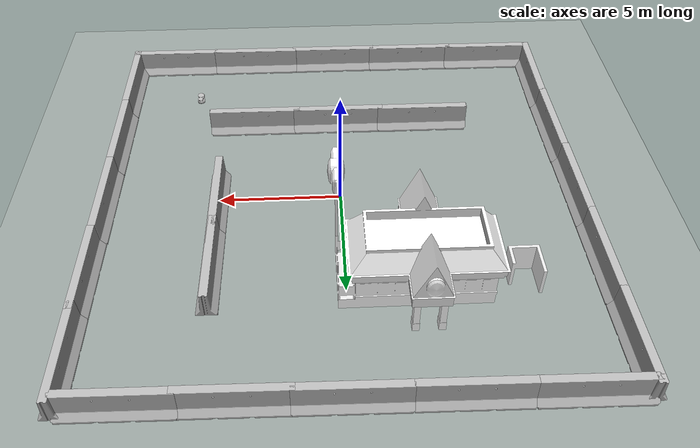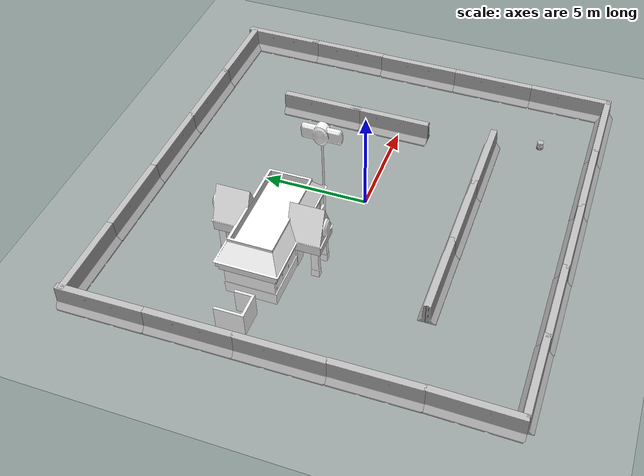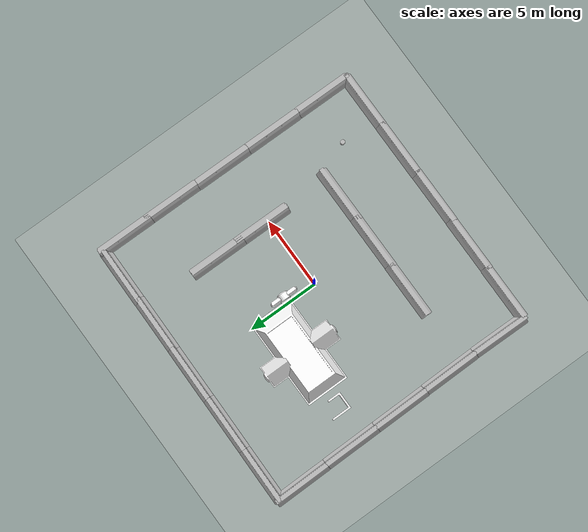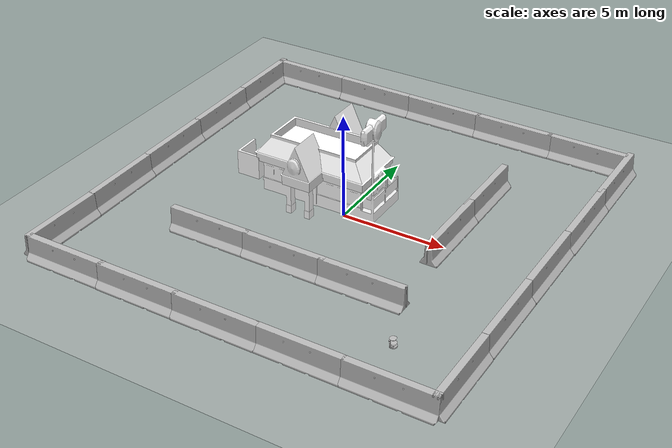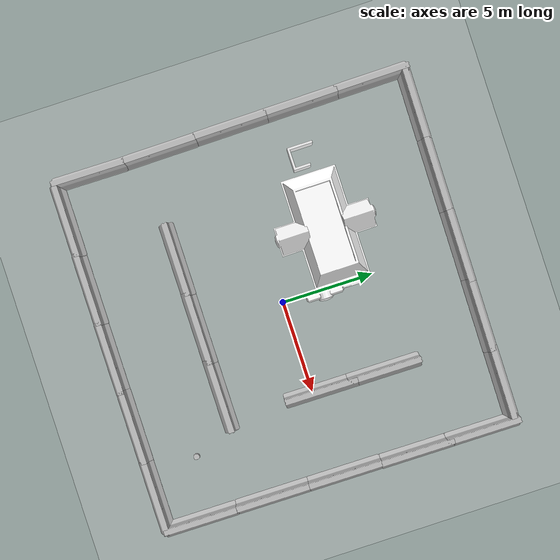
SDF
<sdf version="1.6">
 <world name="default">
  <light name="sun" type="directional">
   <pose>0 0 10 0 -0 0</pose>
   <diffuse>0.8 0.8 0.8 1</diffuse>
   <specular>0.1 0.1 0.1 1</specular>
   <attenuation>
    <range>1000</range>
    <constant>0.9</constant>
    <linear>0.01</linear>
    <quadratic>0.001</quadratic>
   </attenuation>
   <direction>-0.5 0.5 -1</direction>
  </light>
  <model name="ground_plane">
   <static>1</static>
   <link name="link">
    <collision name="collision">
     <geometry><plane><normal>0 0 1</normal><size>100 100</size></plane></geometry>
     <surface><friction><ode><mu>100</mu><mu2>50</mu2></ode></friction></surface>
    </collision>
    <visual name="visual">
     <cast_shadows>0</cast_shadows>
     <geometry><plane><normal>0 0 1</normal><size>100 100</size></plane></geometry>
     <material>
      <script><uri>file://media/materials/scripts/gazebo.material</uri><name>Gazebo/Grey</name></script>
     </material>
    </visual>
   </link>
  </model>
  <gravity>0 0 -9.8</gravity>
  <magnetic_field>6e-06 2.3e-05 -4.2e-05</magnetic_field>
  <atmosphere type="adiabatic"/>
  <physics name="default_physics" default="0" type="ode">
   <max_step_size>0.001</max_step_size>
   <real_time_factor>1</real_time_factor>
   <real_time_update_rate>1000</real_time_update_rate>
  </physics>
  <scene><ambient>0.4 0.4 0.4 1</ambient><background>0.7 0.7 0.7 1</background><shadows>1</shadows></scene>
  <spherical_coordinates>
   <surface_model>EARTH_WGS84</surface_model>
   <latitude_deg>0</latitude_deg>
   <longitude_deg>0</longitude_deg>
   <elevation>0</elevation>
   <heading_deg>0</heading_deg>
  </spherical_coordinates>
  <model name="jersey_barrier_0">
   <static>1</static>
   <link name="link">
    <visual name="visual">
     <geometry>
      <mesh><uri>model://jersey_barrier/meshes/jersey_barrier.dae</uri><scale>1 1 1</scale></mesh>
     </geometry>
    </visual>
    <collision name="upright">
     <pose>0 0 0.5715 0 -0 0</pose>
     <geometry><box><size>4.06542 0.3063 1.143</size></box></geometry>
    </collision>
    <collision name="base">
     <pose>0 0 0.032258 0 -0 0</pose>
     <geometry><box><size>4.06542 0.8107 0.064516</size></box></geometry>
    </collision>
    <collision name="base2">
     <pose>0 0 0.1 0 -0 0</pose>
     <geometry><box><size>4.06542 0.65 0.1</size></box></geometry>
    </collision>
    <collision name="base3">
     <pose>0 0 0.2 0 -0 0</pose>
     <geometry><box><size>4.06542 0.5 0.1</size></box></geometry>
    </collision>
    <collision name="left-angle">
     <pose>0 -0.224 0.2401 0.9 -0 0</pose>
     <geometry><box><size>4.06542 0.5 0.064516</size></box></geometry>
    </collision>
    <collision name="right-angle">
     <pose>0 0.224 0.2401 -0.9 0 0</pose>
     <geometry><box><size>4.06542 0.5 0.064516</size></box></geometry>
    </collision>
   </link>
   <pose>-3.89359 -4.65909 0 0 -0 0</pose>
  </model>
  <model name="jersey_barrier_0_clone">
   <static>1</static>
   <link name="link">
    <visual name="visual">
     <geometry>
      <mesh><uri>model://jersey_barrier/meshes/jersey_barrier.dae</uri><scale>1 1 1</scale></mesh>
     </geometry>
    </visual>
    <collision name="upright">
     <pose>0 0 0.5715 0 -0 0</pose>
     <geometry><box><size>4.06542 0.3063 1.143</size></box></geometry>
    </collision>
    <collision name="base">
     <pose>0 0 0.032258 0 -0 0</pose>
     <geometry><box><size>4.06542 0.8107 0.064516</size></box></geometry>
    </collision>
    <collision name="base2">
     <pose>0 0 0.1 0 -0 0</pose>
     <geometry><box><size>4.06542 0.65 0.1</size></box></geometry>
    </collision>
    <collision name="base3">
     <pose>0 0 0.2 0 -0 0</pose>
     <geometry><box><size>4.06542 0.5 0.1</size></box></geometry>
    </collision>
    <collision name="left-angle">
     <pose>0 -0.224 0.2401 0.9 -0 0</pose>
     <geometry><box><size>4.06542 0.5 0.064516</size></box></geometry>
    </collision>
    <collision name="right-angle">
     <pose>0 0.224 0.2401 -0.9 0 0</pose>
     <geometry><box><size>4.06542 0.5 0.064516</size></box></geometry>
    </collision>
   </link>
   <pose>-0.086968 -4.67349 0 0 -0 0</pose>
  </model>
  <model name="jersey_barrier_0_clone_0">
   <static>1</static>
   <link name="link">
    <visual name="visual">
     <geometry>
      <mesh><uri>model://jersey_barrier/meshes/jersey_barrier.dae</uri><scale>1 1 1</scale></mesh>
     </geometry>
    </visual>
    <collision name="upright">
     <pose>0 0 0.5715 0 -0 0</pose>
     <geometry><box><size>4.06542 0.3063 1.143</size></box></geometry>
    </collision>
    <collision name="base">
     <pose>0 0 0.032258 0 -0 0</pose>
     <geometry><box><size>4.06542 0.8107 0.064516</size></box></geometry>
    </collision>
    <collision name="base2">
     <pose>0 0 0.1 0 -0 0</pose>
     <geometry><box><size>4.06542 0.65 0.1</size></box></geometry>
    </collision>
    <collision name="base3">
     <pose>0 0 0.2 0 -0 0</pose>
     <geometry><box><size>4.06542 0.5 0.1</size></box></geometry>
    </collision>
    <collision name="left-angle">
     <pose>0 -0.224 0.2401 0.9 -0 0</pose>
     <geometry><box><size>4.06542 0.5 0.064516</size></box></geometry>
    </collision>
    <collision name="right-angle">
     <pose>0 0.224 0.2401 -0.9 0 0</pose>
     <geometry><box><size>4.06542 0.5 0.064516</size></box></geometry>
    </collision>
   </link>
   <pose>3.65659 -4.67988 0 0 -0 0</pose>
  </model>
  <model name="Fast Food">
   <static>1</static>
   <link name="link">
    <collision name="collision">
     <geometry><mesh><uri>model://fast_food/meshes/fast_food.dae</uri><scale>1 1 1</scale></mesh></geometry>
    </collision>
    <visual name="visual">
     <geometry><mesh><uri>model://fast_food/meshes/fast_food.dae</uri><scale>1 1 1</scale></mesh></geometry>
     <material>
      <script>
       <uri>model://fast_food/materials/scripts</uri>
       <uri>model://fast_food/materials/textures</uri>
       <name>FastFood/Diffuse</name>
      </script>
     </material>
    </visual>
   </link>
   <pose>-3.09882 3.36538 0 0 -0 0</pose>
  </model>
  <model name="jersey_barrier_1">
   <static>1</static>
   <link name="link">
    <visual name="visual">
     <geometry>
      <mesh><uri>model://jersey_barrier/meshes/jersey_barrier.dae</uri><scale>1 1 1</scale></mesh>
     </geometry>
    </visual>
    <collision name="upright">
     <pose>0 0 0.5715 0 -0 0</pose>
     <geometry><box><size>4.06542 0.3063 1.143</size></box></geometry>
    </collision>
    <collision name="base">
     <pose>0 0 0.032258 0 -0 0</pose>
     <geometry><box><size>4.06542 0.8107 0.064516</size></box></geometry>
    </collision>
    <collision name="base2">
     <pose>0 0 0.1 0 -0 0</pose>
     <geometry><box><size>4.06542 0.65 0.1</size></box></geometry>
    </collision>
    <collision name="base3">
     <pose>0 0 0.2 0 -0 0</pose>
     <geometry><box><size>4.06542 0.5 0.1</size></box></geometry>
    </collision>
    <collision name="left-angle">
     <pose>0 -0.224 0.2401 0.9 -0 0</pose>
     <geometry><box><size>4.06542 0.5 0.064516</size></box></geometry>
    </collision>
    <collision name="right-angle">
     <pose>0 0.224 0.2401 -0.9 0 0</pose>
     <geometry><box><size>4.06542 0.5 0.064516</size></box></geometry>
    </collision>
   </link>
   <pose>-9.67411 -7.65823 0 0 -0 1.5609</pose>
  </model>
  <model name="jersey_barrier_0_clone_1">
   <static>1</static>
   <link name="link">
    <visual name="visual">
     <geometry>
      <mesh><uri>model://jersey_barrier/meshes/jersey_barrier.dae</uri><scale>1 1 1</scale></mesh>
     </geometry>
    </visual>
    <collision name="upright">
     <pose>0 0 0.5715 0 -0 0</pose>
     <geometry><box><size>4.06542 0.3063 1.143</size></box></geometry>
    </collision>
    <collision name="base">
     <pose>0 0 0.032258 0 -0 0</pose>
     <geometry><box><size>4.06542 0.8107 0.064516</size></box></geometry>
    </collision>
    <collision name="base2">
     <pose>0 0 0.1 0 -0 0</pose>
     <geometry><box><size>4.06542 0.65 0.1</size></box></geometry>
    </collision>
    <collision name="base3">
     <pose>0 0 0.2 0 -0 0</pose>
     <geometry><box><size>4.06542 0.5 0.1</size></box></geometry>
    </collision>
    <collision name="left-angle">
     <pose>0 -0.224 0.2401 0.9 -0 0</pose>
     <geometry><box><size>4.06542 0.5 0.064516</size></box></geometry>
    </collision>
    <collision name="right-angle">
     <pose>0 0.224 0.2401 -0.9 0 0</pose>
     <geometry><box><size>4.06542 0.5 0.064516</size></box></geometry>
    </collision>
   </link>
   <pose>-9.68796 -3.71231 0 0 -0 1.57976</pose>
  </model>
  <model name="jersey_barrier_0_clone_2">
   <static>1</static>
   <link name="link">
    <visual name="visual">
     <geometry>
      <mesh><uri>model://jersey_barrier/meshes/jersey_barrier.dae</uri><scale>1 1 1</scale></mesh>
     </geometry>
    </visual>
    <collision name="upright">
     <pose>0 0 0.5715 0 -0 0</pose>
     <geometry><box><size>4.06542 0.3063 1.143</size></box></geometry>
    </collision>
    <collision name="base">
     <pose>0 0 0.032258 0 -0 0</pose>
     <geometry><box><size>4.06542 0.8107 0.064516</size></box></geometry>
    </collision>
    <collision name="base2">
     <pose>0 0 0.1 0 -0 0</pose>
     <geometry><box><size>4.06542 0.65 0.1</size></box></geometry>
    </collision>
    <collision name="base3">
     <pose>0 0 0.2 0 -0 0</pose>
     <geometry><box><size>4.06542 0.5 0.1</size></box></geometry>
    </collision>
    <collision name="left-angle">
     <pose>0 -0.224 0.2401 0.9 -0 0</pose>
     <geometry><box><size>4.06542 0.5 0.064516</size></box></geometry>
    </collision>
    <collision name="right-angle">
     <pose>0 0.224 0.2401 -0.9 0 0</pose>
     <geometry><box><size>4.06542 0.5 0.064516</size></box></geometry>
    </collision>
   </link>
   <pose>-7.66508 -9.54476 0 0 -0 0</pose>
  </model>
  <model name="jersey_barrier_0_clone_2_clone">
   <static>1</static>
   <link name="link">
    <visual name="visual">
     <geometry>
      <mesh><uri>model://jersey_barrier/meshes/jersey_barrier.dae</uri><scale>1 1 1</scale></mesh>
     </geometry>
    </visual>
    <collision name="upright">
     <pose>0 0 0.5715 0 -0 0</pose>
     <geometry><box><size>4.06542 0.3063 1.143</size></box></geometry>
    </collision>
    <collision name="base">
     <pose>0 0 0.032258 0 -0 0</pose>
     <geometry><box><size>4.06542 0.8107 0.064516</size></box></geometry>
    </collision>
    <collision name="base2">
     <pose>0 0 0.1 0 -0 0</pose>
     <geometry><box><size>4.06542 0.65 0.1</size></box></geometry>
    </collision>
    <collision name="base3">
     <pose>0 0 0.2 0 -0 0</pose>
     <geometry><box><size>4.06542 0.5 0.1</size></box></geometry>
    </collision>
    <collision name="left-angle">
     <pose>0 -0.224 0.2401 0.9 -0 0</pose>
     <geometry><box><size>4.06542 0.5 0.064516</size></box></geometry>
    </collision>
    <collision name="right-angle">
     <pose>0 0.224 0.2401 -0.9 0 0</pose>
     <geometry><box><size>4.06542 0.5 0.064516</size></box></geometry>
    </collision>
   </link>
   <pose>-3.85654 -9.5699 0 0 -0 0</pose>
  </model>
  <model name="jersey_barrier_0_clone_2_clone_0">
   <static>1</static>
   <link name="link">
    <visual name="visual">
     <geometry>
      <mesh><uri>model://jersey_barrier/meshes/jersey_barrier.dae</uri><scale>1 1 1</scale></mesh>
     </geometry>
    </visual>
    <collision name="upright">
     <pose>0 0 0.5715 0 -0 0</pose>
     <geometry><box><size>4.06542 0.3063 1.143</size></box></geometry>
    </collision>
    <collision name="base">
     <pose>0 0 0.032258 0 -0 0</pose>
     <geometry><box><size>4.06542 0.8107 0.064516</size></box></geometry>
    </collision>
    <collision name="base2">
     <pose>0 0 0.1 0 -0 0</pose>
     <geometry><box><size>4.06542 0.65 0.1</size></box></geometry>
    </collision>
    <collision name="base3">
     <pose>0 0 0.2 0 -0 0</pose>
     <geometry><box><size>4.06542 0.5 0.1</size></box></geometry>
    </collision>
    <collision name="left-angle">
     <pose>0 -0.224 0.2401 0.9 -0 0</pose>
     <geometry><box><size>4.06542 0.5 0.064516</size></box></geometry>
    </collision>
    <collision name="right-angle">
     <pose>0 0.224 0.2401 -0.9 0 0</pose>
     <geometry><box><size>4.06542 0.5 0.064516</size></box></geometry>
    </collision>
   </link>
   <pose>-0.028312 -9.58643 0 0 -0 0</pose>
  </model>
  <model name="jersey_barrier_0_clone_2_clone_0_clone">
   <static>1</static>
   <link name="link">
    <visual name="visual">
     <geometry>
      <mesh><uri>model://jersey_barrier/meshes/jersey_barrier.dae</uri><scale>1 1 1</scale></mesh>
     </geometry>
    </visual>
    <collision name="upright">
     <pose>0 0 0.5715 0 -0 0</pose>
     <geometry><box><size>4.06542 0.3063 1.143</size></box></geometry>
    </collision>
    <collision name="base">
     <pose>0 0 0.032258 0 -0 0</pose>
     <geometry><box><size>4.06542 0.8107 0.064516</size></box></geometry>
    </collision>
    <collision name="base2">
     <pose>0 0 0.1 0 -0 0</pose>
     <geometry><box><size>4.06542 0.65 0.1</size></box></geometry>
    </collision>
    <collision name="base3">
     <pose>0 0 0.2 0 -0 0</pose>
     <geometry><box><size>4.06542 0.5 0.1</size></box></geometry>
    </collision>
    <collision name="left-angle">
     <pose>0 -0.224 0.2401 0.9 -0 0</pose>
     <geometry><box><size>4.06542 0.5 0.064516</size></box></geometry>
    </collision>
    <collision name="right-angle">
     <pose>0 0.224 0.2401 -0.9 0 0</pose>
     <geometry><box><size>4.06542 0.5 0.064516</size></box></geometry>
    </collision>
   </link>
   <pose>3.81422 -9.57629 0 0 -0 0</pose>
  </model>
  <model name="jersey_barrier_0_clone_2_clone_0_clone_clone">
   <static>1</static>
   <link name="link">
    <visual name="visual">
     <geometry>
      <mesh><uri>model://jersey_barrier/meshes/jersey_barrier.dae</uri><scale>1 1 1</scale></mesh>
     </geometry>
    </visual>
    <collision name="upright">
     <pose>0 0 0.5715 0 -0 0</pose>
     <geometry><box><size>4.06542 0.3063 1.143</size></box></geometry>
    </collision>
    <collision name="base">
     <pose>0 0 0.032258 0 -0 0</pose>
     <geometry><box><size>4.06542 0.8107 0.064516</size></box></geometry>
    </collision>
    <collision name="base2">
     <pose>0 0 0.1 0 -0 0</pose>
     <geometry><box><size>4.06542 0.65 0.1</size></box></geometry>
    </collision>
    <collision name="base3">
     <pose>0 0 0.2 0 -0 0</pose>
     <geometry><box><size>4.06542 0.5 0.1</size></box></geometry>
    </collision>
    <collision name="left-angle">
     <pose>0 -0.224 0.2401 0.9 -0 0</pose>
     <geometry><box><size>4.06542 0.5 0.064516</size></box></geometry>
    </collision>
    <collision name="right-angle">
     <pose>0 0.224 0.2401 -0.9 0 0</pose>
     <geometry><box><size>4.06542 0.5 0.064516</size></box></geometry>
    </collision>
   </link>
   <pose>9.60399 -7.70918 0 0 -0 1.56453</pose>
  </model>
  <model name="jersey_barrier_0_clone_2_clone_0_clone_clone_clone">
   <static>1</static>
   <link name="link">
    <visual name="visual">
     <geometry>
      <mesh><uri>model://jersey_barrier/meshes/jersey_barrier.dae</uri><scale>1 1 1</scale></mesh>
     </geometry>
    </visual>
    <collision name="upright">
     <pose>0 0 0.5715 0 -0 0</pose>
     <geometry><box><size>4.06542 0.3063 1.143</size></box></geometry>
    </collision>
    <collision name="base">
     <pose>0 0 0.032258 0 -0 0</pose>
     <geometry><box><size>4.06542 0.8107 0.064516</size></box></geometry>
    </collision>
    <collision name="base2">
     <pose>0 0 0.1 0 -0 0</pose>
     <geometry><box><size>4.06542 0.65 0.1</size></box></geometry>
    </collision>
    <collision name="base3">
     <pose>0 0 0.2 0 -0 0</pose>
     <geometry><box><size>4.06542 0.5 0.1</size></box></geometry>
    </collision>
    <collision name="left-angle">
     <pose>0 -0.224 0.2401 0.9 -0 0</pose>
     <geometry><box><size>4.06542 0.5 0.064516</size></box></geometry>
    </collision>
    <collision name="right-angle">
     <pose>0 0.224 0.2401 -0.9 0 0</pose>
     <geometry><box><size>4.06542 0.5 0.064516</size></box></geometry>
    </collision>
   </link>
   <pose>7.73148 -9.58291 0 0 -0 0</pose>
  </model>
  <model name="jersey_barrier_0_clone_2_clone_0_clone_clone_clone_0">
   <static>1</static>
   <link name="link">
    <visual name="visual">
     <geometry>
      <mesh><uri>model://jersey_barrier/meshes/jersey_barrier.dae</uri><scale>1 1 1</scale></mesh>
     </geometry>
    </visual>
    <collision name="upright">
     <pose>0 0 0.5715 0 -0 0</pose>
     <geometry><box><size>4.06542 0.3063 1.143</size></box></geometry>
    </collision>
    <collision name="base">
     <pose>0 0 0.032258 0 -0 0</pose>
     <geometry><box><size>4.06542 0.8107 0.064516</size></box></geometry>
    </collision>
    <collision name="base2">
     <pose>0 0 0.1 0 -0 0</pose>
     <geometry><box><size>4.06542 0.65 0.1</size></box></geometry>
    </collision>
    <collision name="base3">
     <pose>0 0 0.2 0 -0 0</pose>
     <geometry><box><size>4.06542 0.5 0.1</size></box></geometry>
    </collision>
    <collision name="left-angle">
     <pose>0 -0.224 0.2401 0.9 -0 0</pose>
     <geometry><box><size>4.06542 0.5 0.064516</size></box></geometry>
    </collision>
    <collision name="right-angle">
     <pose>0 0.224 0.2401 -0.9 0 0</pose>
     <geometry><box><size>4.06542 0.5 0.064516</size></box></geometry>
    </collision>
   </link>
   <pose>9.61703 -3.69576 0 0 -0 1.56453</pose>
  </model>
  <model name="jersey_barrier_0_clone_2_clone_0_clone_clone_clone_0_clone">
   <static>1</static>
   <link name="link">
    <visual name="visual">
     <geometry>
      <mesh><uri>model://jersey_barrier/meshes/jersey_barrier.dae</uri><scale>1 1 1</scale></mesh>
     </geometry>
    </visual>
    <collision name="upright">
     <pose>0 0 0.5715 0 -0 0</pose>
     <geometry><box><size>4.06542 0.3063 1.143</size></box></geometry>
    </collision>
    <collision name="base">
     <pose>0 0 0.032258 0 -0 0</pose>
     <geometry><box><size>4.06542 0.8107 0.064516</size></box></geometry>
    </collision>
    <collision name="base2">
     <pose>0 0 0.1 0 -0 0</pose>
     <geometry><box><size>4.06542 0.65 0.1</size></box></geometry>
    </collision>
    <collision name="base3">
     <pose>0 0 0.2 0 -0 0</pose>
     <geometry><box><size>4.06542 0.5 0.1</size></box></geometry>
    </collision>
    <collision name="left-angle">
     <pose>0 -0.224 0.2401 0.9 -0 0</pose>
     <geometry><box><size>4.06542 0.5 0.064516</size></box></geometry>
    </collision>
    <collision name="right-angle">
     <pose>0 0.224 0.2401 -0.9 0 0</pose>
     <geometry><box><size>4.06542 0.5 0.064516</size></box></geometry>
    </collision>
   </link>
   <pose>9.64222 0.303527 0 0 -0 1.56453</pose>
  </model>
  <model name="jersey_barrier_0_clone_2_clone_0_clone_clone_clone_0_clone_clone">
   <static>1</static>
   <link name="link">
    <visual name="visual">
     <geometry>
      <mesh><uri>model://jersey_barrier/meshes/jersey_barrier.dae</uri><scale>1 1 1</scale></mesh>
     </geometry>
    </visual>
    <collision name="upright">
     <pose>0 0 0.5715 0 -0 0</pose>
     <geometry><box><size>4.06542 0.3063 1.143</size></box></geometry>
    </collision>
    <collision name="base">
     <pose>0 0 0.032258 0 -0 0</pose>
     <geometry><box><size>4.06542 0.8107 0.064516</size></box></geometry>
    </collision>
    <collision name="base2">
     <pose>0 0 0.1 0 -0 0</pose>
     <geometry><box><size>4.06542 0.65 0.1</size></box></geometry>
    </collision>
    <collision name="base3">
     <pose>0 0 0.2 0 -0 0</pose>
     <geometry><box><size>4.06542 0.5 0.1</size></box></geometry>
    </collision>
    <collision name="left-angle">
     <pose>0 -0.224 0.2401 0.9 -0 0</pose>
     <geometry><box><size>4.06542 0.5 0.064516</size></box></geometry>
    </collision>
    <collision name="right-angle">
     <pose>0 0.224 0.2401 -0.9 0 0</pose>
     <geometry><box><size>4.06542 0.5 0.064516</size></box></geometry>
    </collision>
   </link>
   <pose>9.69329 4.31576 0 0 -0 1.56453</pose>
  </model>
  <model name="jersey_barrier_0_clone_2_clone_0_clone_clone_clone_0_clone_clone_clone">
   <static>1</static>
   <link name="link">
    <visual name="visual">
     <geometry>
      <mesh><uri>model://jersey_barrier/meshes/jersey_barrier.dae</uri><scale>1 1 1</scale></mesh>
     </geometry>
    </visual>
    <collision name="upright">
     <pose>0 0 0.5715 0 -0 0</pose>
     <geometry><box><size>4.06542 0.3063 1.143</size></box></geometry>
    </collision>
    <collision name="base">
     <pose>0 0 0.032258 0 -0 0</pose>
     <geometry><box><size>4.06542 0.8107 0.064516</size></box></geometry>
    </collision>
    <collision name="base2">
     <pose>0 0 0.1 0 -0 0</pose>
     <geometry><box><size>4.06542 0.65 0.1</size></box></geometry>
    </collision>
    <collision name="base3">
     <pose>0 0 0.2 0 -0 0</pose>
     <geometry><box><size>4.06542 0.5 0.1</size></box></geometry>
    </collision>
    <collision name="left-angle">
     <pose>0 -0.224 0.2401 0.9 -0 0</pose>
     <geometry><box><size>4.06542 0.5 0.064516</size></box></geometry>
    </collision>
    <collision name="right-angle">
     <pose>0 0.224 0.2401 -0.9 0 0</pose>
     <geometry><box><size>4.06542 0.5 0.064516</size></box></geometry>
    </collision>
   </link>
   <pose>9.71022 7.9782 0 0 -0 1.56453</pose>
  </model>
  <model name="jersey_barrier_0_clone_1_clone">
   <static>1</static>
   <link name="link">
    <visual name="visual">
     <geometry>
      <mesh><uri>model://jersey_barrier/meshes/jersey_barrier.dae</uri><scale>1 1 1</scale></mesh>
     </geometry>
    </visual>
    <collision name="upright">
     <pose>0 0 0.5715 0 -0 0</pose>
     <geometry><box><size>4.06542 0.3063 1.143</size></box></geometry>
    </collision>
    <collision name="base">
     <pose>0 0 0.032258 0 -0 0</pose>
     <geometry><box><size>4.06542 0.8107 0.064516</size></box></geometry>
    </collision>
    <collision name="base2">
     <pose>0 0 0.1 0 -0 0</pose>
     <geometry><box><size>4.06542 0.65 0.1</size></box></geometry>
    </collision>
    <collision name="base3">
     <pose>0 0 0.2 0 -0 0</pose>
     <geometry><box><size>4.06542 0.5 0.1</size></box></geometry>
    </collision>
    <collision name="left-angle">
     <pose>0 -0.224 0.2401 0.9 -0 0</pose>
     <geometry><box><size>4.06542 0.5 0.064516</size></box></geometry>
    </collision>
    <collision name="right-angle">
     <pose>0 0.224 0.2401 -0.9 0 0</pose>
     <geometry><box><size>4.06542 0.5 0.064516</size></box></geometry>
    </collision>
   </link>
   <pose>-9.74351 0.255945 0 0 -0 1.57976</pose>
  </model>
  <model name="jersey_barrier_0_clone_1_clone_clone">
   <static>1</static>
   <link name="link">
    <visual name="visual">
     <geometry>
      <mesh><uri>model://jersey_barrier/meshes/jersey_barrier.dae</uri><scale>1 1 1</scale></mesh>
     </geometry>
    </visual>
    <collision name="upright">
     <pose>0 0 0.5715 0 -0 0</pose>
     <geometry><box><size>4.06542 0.3063 1.143</size></box></geometry>
    </collision>
    <collision name="base">
     <pose>0 0 0.032258 0 -0 0</pose>
     <geometry><box><size>4.06542 0.8107 0.064516</size></box></geometry>
    </collision>
    <collision name="base2">
     <pose>0 0 0.1 0 -0 0</pose>
     <geometry><box><size>4.06542 0.65 0.1</size></box></geometry>
    </collision>
    <collision name="base3">
     <pose>0 0 0.2 0 -0 0</pose>
     <geometry><box><size>4.06542 0.5 0.1</size></box></geometry>
    </collision>
    <collision name="left-angle">
     <pose>0 -0.224 0.2401 0.9 -0 0</pose>
     <geometry><box><size>4.06542 0.5 0.064516</size></box></geometry>
    </collision>
    <collision name="right-angle">
     <pose>0 0.224 0.2401 -0.9 0 0</pose>
     <geometry><box><size>4.06542 0.5 0.064516</size></box></geometry>
    </collision>
   </link>
   <pose>-9.77979 4.18299 0 0 -0 1.57976</pose>
  </model>
  <model name="jersey_barrier_0_clone_1_clone_clone_clone">
   <static>1</static>
   <link name="link">
    <visual name="visual">
     <geometry>
      <mesh><uri>model://jersey_barrier/meshes/jersey_barrier.dae</uri><scale>1 1 1</scale></mesh>
     </geometry>
    </visual>
    <collision name="upright">
     <pose>0 0 0.5715 0 -0 0</pose>
     <geometry><box><size>4.06542 0.3063 1.143</size></box></geometry>
    </collision>
    <collision name="base">
     <pose>0 0 0.032258 0 -0 0</pose>
     <geometry><box><size>4.06542 0.8107 0.064516</size></box></geometry>
    </collision>
    <collision name="base2">
     <pose>0 0 0.1 0 -0 0</pose>
     <geometry><box><size>4.06542 0.65 0.1</size></box></geometry>
    </collision>
    <collision name="base3">
     <pose>0 0 0.2 0 -0 0</pose>
     <geometry><box><size>4.06542 0.5 0.1</size></box></geometry>
    </collision>
    <collision name="left-angle">
     <pose>0 -0.224 0.2401 0.9 -0 0</pose>
     <geometry><box><size>4.06542 0.5 0.064516</size></box></geometry>
    </collision>
    <collision name="right-angle">
     <pose>0 0.224 0.2401 -0.9 0 0</pose>
     <geometry><box><size>4.06542 0.5 0.064516</size></box></geometry>
    </collision>
   </link>
   <pose>-9.82539 8.15756 0 0 -0 1.57976</pose>
  </model>
  <model name="jersey_barrier_0_clone_1_clone_clone_clone_clone">
   <static>1</static>
   <link name="link">
    <visual name="visual">
     <geometry>
      <mesh><uri>model://jersey_barrier/meshes/jersey_barrier.dae</uri><scale>1 1 1</scale></mesh>
     </geometry>
    </visual>
    <collision name="upright">
     <pose>0 0 0.5715 0 -0 0</pose>
     <geometry><box><size>4.06542 0.3063 1.143</size></box></geometry>
    </collision>
    <collision name="base">
     <pose>0 0 0.032258 0 -0 0</pose>
     <geometry><box><size>4.06542 0.8107 0.064516</size></box></geometry>
    </collision>
    <collision name="base2">
     <pose>0 0 0.1 0 -0 0</pose>
     <geometry><box><size>4.06542 0.65 0.1</size></box></geometry>
    </collision>
    <collision name="base3">
     <pose>0 0 0.2 0 -0 0</pose>
     <geometry><box><size>4.06542 0.5 0.1</size></box></geometry>
    </collision>
    <collision name="left-angle">
     <pose>0 -0.224 0.2401 0.9 -0 0</pose>
     <geometry><box><size>4.06542 0.5 0.064516</size></box></geometry>
    </collision>
    <collision name="right-angle">
     <pose>0 0.224 0.2401 -0.9 0 0</pose>
     <geometry><box><size>4.06542 0.5 0.064516</size></box></geometry>
    </collision>
   </link>
   <pose>-7.93608 9.88765 0 0 -0 3.12965</pose>
  </model>
  <model name="jersey_barrier_0_clone_1_clone_clone_clone_clone_clone">
   <static>1</static>
   <link name="link">
    <visual name="visual">
     <geometry>
      <mesh><uri>model://jersey_barrier/meshes/jersey_barrier.dae</uri><scale>1 1 1</scale></mesh>
     </geometry>
    </visual>
    <collision name="upright">
     <pose>0 0 0.5715 0 -0 0</pose>
     <geometry><box><size>4.06542 0.3063 1.143</size></box></geometry>
    </collision>
    <collision name="base">
     <pose>0 0 0.032258 0 -0 0</pose>
     <geometry><box><size>4.06542 0.8107 0.064516</size></box></geometry>
    </collision>
    <collision name="base2">
     <pose>0 0 0.1 0 -0 0</pose>
     <geometry><box><size>4.06542 0.65 0.1</size></box></geometry>
    </collision>
    <collision name="base3">
     <pose>0 0 0.2 0 -0 0</pose>
     <geometry><box><size>4.06542 0.5 0.1</size></box></geometry>
    </collision>
    <collision name="left-angle">
     <pose>0 -0.224 0.2401 0.9 -0 0</pose>
     <geometry><box><size>4.06542 0.5 0.064516</size></box></geometry>
    </collision>
    <collision name="right-angle">
     <pose>0 0.224 0.2401 -0.9 0 0</pose>
     <geometry><box><size>4.06542 0.5 0.064516</size></box></geometry>
    </collision>
   </link>
   <pose>-3.93936 9.83637 0 0 -0 3.12965</pose>
  </model>
  <model name="jersey_barrier_0_clone_1_clone_clone_clone_clone_clone_clone">
   <static>1</static>
   <link name="link">
    <visual name="visual">
     <geometry>
      <mesh><uri>model://jersey_barrier/meshes/jersey_barrier.dae</uri><scale>1 1 1</scale></mesh>
     </geometry>
    </visual>
    <collision name="upright">
     <pose>0 0 0.5715 0 -0 0</pose>
     <geometry><box><size>4.06542 0.3063 1.143</size></box></geometry>
    </collision>
    <collision name="base">
     <pose>0 0 0.032258 0 -0 0</pose>
     <geometry><box><size>4.06542 0.8107 0.064516</size></box></geometry>
    </collision>
    <collision name="base2">
     <pose>0 0 0.1 0 -0 0</pose>
     <geometry><box><size>4.06542 0.65 0.1</size></box></geometry>
    </collision>
    <collision name="base3">
     <pose>0 0 0.2 0 -0 0</pose>
     <geometry><box><size>4.06542 0.5 0.1</size></box></geometry>
    </collision>
    <collision name="left-angle">
     <pose>0 -0.224 0.2401 0.9 -0 0</pose>
     <geometry><box><size>4.06542 0.5 0.064516</size></box></geometry>
    </collision>
    <collision name="right-angle">
     <pose>0 0.224 0.2401 -0.9 0 0</pose>
     <geometry><box><size>4.06542 0.5 0.064516</size></box></geometry>
    </collision>
   </link>
   <pose>0.028464 9.79469 0 0 -0 3.12965</pose>
  </model>
  <model name="jersey_barrier_0_clone_1_clone_clone_clone_clone_clone_clone_clone">
   <static>1</static>
   <link name="link">
    <visual name="visual">
     <geometry>
      <mesh><uri>model://jersey_barrier/meshes/jersey_barrier.dae</uri><scale>1 1 1</scale></mesh>
     </geometry>
    </visual>
    <collision name="upright">
     <pose>0 0 0.5715 0 -0 0</pose>
     <geometry><box><size>4.06542 0.3063 1.143</size></box></geometry>
    </collision>
    <collision name="base">
     <pose>0 0 0.032258 0 -0 0</pose>
     <geometry><box><size>4.06542 0.8107 0.064516</size></box></geometry>
    </collision>
    <collision name="base2">
     <pose>0 0 0.1 0 -0 0</pose>
     <geometry><box><size>4.06542 0.65 0.1</size></box></geometry>
    </collision>
    <collision name="base3">
     <pose>0 0 0.2 0 -0 0</pose>
     <geometry><box><size>4.06542 0.5 0.1</size></box></geometry>
    </collision>
    <collision name="left-angle">
     <pose>0 -0.224 0.2401 0.9 -0 0</pose>
     <geometry><box><size>4.06542 0.5 0.064516</size></box></geometry>
    </collision>
    <collision name="right-angle">
     <pose>0 0.224 0.2401 -0.9 0 0</pose>
     <geometry><box><size>4.06542 0.5 0.064516</size></box></geometry>
    </collision>
   </link>
   <pose>3.86236 9.74275 0 0 -0 3.12965</pose>
  </model>
  <model name="jersey_barrier_0_clone_1_clone_clone_clone_clone_clone_clone_clone_clone">
   <static>1</static>
   <link name="link">
    <visual name="visual">
     <geometry>
      <mesh><uri>model://jersey_barrier/meshes/jersey_barrier.dae</uri><scale>1 1 1</scale></mesh>
     </geometry>
    </visual>
    <collision name="upright">
     <pose>0 0 0.5715 0 -0 0</pose>
     <geometry><box><size>4.06542 0.3063 1.143</size></box></geometry>
    </collision>
    <collision name="base">
     <pose>0 0 0.032258 0 -0 0</pose>
     <geometry><box><size>4.06542 0.8107 0.064516</size></box></geometry>
    </collision>
    <collision name="base2">
     <pose>0 0 0.1 0 -0 0</pose>
     <geometry><box><size>4.06542 0.65 0.1</size></box></geometry>
    </collision>
    <collision name="base3">
     <pose>0 0 0.2 0 -0 0</pose>
     <geometry><box><size>4.06542 0.5 0.1</size></box></geometry>
    </collision>
    <collision name="left-angle">
     <pose>0 -0.224 0.2401 0.9 -0 0</pose>
     <geometry><box><size>4.06542 0.5 0.064516</size></box></geometry>
    </collision>
    <collision name="right-angle">
     <pose>0 0.224 0.2401 -0.9 0 0</pose>
     <geometry><box><size>4.06542 0.5 0.064516</size></box></geometry>
    </collision>
   </link>
   <pose>7.6628 9.70927 0 0 -0 3.12965</pose>
  </model>
  <model name="jersey_barrier_0_clone_2_clone_0_clone_clone_clone_0_clone_clone_0">
   <static>1</static>
   <link name="link">
    <visual name="visual">
     <geometry>
      <mesh><uri>model://jersey_barrier/meshes/jersey_barrier.dae</uri><scale>1 1 1</scale></mesh>
     </geometry>
    </visual>
    <collision name="upright">
     <pose>0 0 0.5715 0 -0 0</pose>
     <geometry><box><size>4.06542 0.3063 1.143</size></box></geometry>
    </collision>
    <collision name="base">
     <pose>0 0 0.032258 0 -0 0</pose>
     <geometry><box><size>4.06542 0.8107 0.064516</size></box></geometry>
    </collision>
    <collision name="base2">
     <pose>0 0 0.1 0 -0 0</pose>
     <geometry><box><size>4.06542 0.65 0.1</size></box></geometry>
    </collision>
    <collision name="base3">
     <pose>0 0 0.2 0 -0 0</pose>
     <geometry><box><size>4.06542 0.5 0.1</size></box></geometry>
    </collision>
    <collision name="left-angle">
     <pose>0 -0.224 0.2401 0.9 -0 0</pose>
     <geometry><box><size>4.06542 0.5 0.064516</size></box></geometry>
    </collision>
    <collision name="right-angle">
     <pose>0 0.224 0.2401 -0.9 0 0</pose>
     <geometry><box><size>4.06542 0.5 0.064516</size></box></geometry>
    </collision>
   </link>
   <pose>5.05491 0.486689 0 0 -0 1.56453</pose>
  </model>
  <model name="jersey_barrier_0_clone_2_clone_0_clone_clone_clone_0_clone_clone_1">
   <static>1</static>
   <link name="link">
    <visual name="visual">
     <geometry>
      <mesh><uri>model://jersey_barrier/meshes/jersey_barrier.dae</uri><scale>1 1 1</scale></mesh>
     </geometry>
    </visual>
    <collision name="upright">
     <pose>0 0 0.5715 0 -0 0</pose>
     <geometry><box><size>4.06542 0.3063 1.143</size></box></geometry>
    </collision>
    <collision name="base">
     <pose>0 0 0.032258 0 -0 0</pose>
     <geometry><box><size>4.06542 0.8107 0.064516</size></box></geometry>
    </collision>
    <collision name="base2">
     <pose>0 0 0.1 0 -0 0</pose>
     <geometry><box><size>4.06542 0.65 0.1</size></box></geometry>
    </collision>
    <collision name="base3">
     <pose>0 0 0.2 0 -0 0</pose>
     <geometry><box><size>4.06542 0.5 0.1</size></box></geometry>
    </collision>
    <collision name="left-angle">
     <pose>0 -0.224 0.2401 0.9 -0 0</pose>
     <geometry><box><size>4.06542 0.5 0.064516</size></box></geometry>
    </collision>
    <collision name="right-angle">
     <pose>0 0.224 0.2401 -0.9 0 0</pose>
     <geometry><box><size>4.06542 0.5 0.064516</size></box></geometry>
    </collision>
   </link>
   <pose>5.07407 3.97899 0 0 -0 1.56453</pose>
  </model>
  <model name="turtlebot">
   <link name="rack">
    <inertial>
     <pose>0.001453 -0.000453 0.029787 0 -0 0</pose>
     <inertia>
      <ixx>0.05864</ixx>
      <ixy>0.000124</ixy>
      <ixz>0.000615</ixz>
      <iyy>0.058786</iyy>
      <iyz>1.4e-05</iyz>
      <izz>1.53244</izz>
     </inertia>
     <mass>2.234</mass>
    </inertial>
    <collision name="plate_0_collision">
     <pose>-0.04334 0 0.084757 0 -0 0</pose>
     <geometry><box><size>0.233502 0.314845 0.006401</size></box></geometry>
    </collision>
    <visual name="plate_0_visual">
     <pose>-0.04334 0 0.084757 0 -0 0</pose>
     <geometry><mesh><uri>model://turtlebot/meshes/plate_0_logo.dae</uri><scale>1 1 1</scale></mesh></geometry>
    </visual>
    <collision name="plate_1_collision">
     <pose>-0.00266 0 0.141907 0 -0 0</pose>
     <geometry><box><size>0.314856 0.314856 0.006401</size></box></geometry>
    </collision>
    <visual name="plate_1_visual">
     <pose>-0.00266 0 0.141907 0 -0 0</pose>
     <geometry><mesh><uri>model://turtlebot/meshes/plate_1_logo.dae</uri><scale>1 1 1</scale></mesh></geometry>
    </visual>
    <collision name="plate_2_collision">
     <pose>-0.00266 0 0.199108 0 -0 0</pose>
     <geometry><box><size>0.314856 0.314856 0.006401</size></box></geometry>
    </collision>
    <visual name="plate_2_visual">
     <pose>-0.00266 0 0.199108 0 -0 0</pose>
     <geometry><mesh><uri>model://turtlebot/meshes/plate_1_logo.dae</uri><scale>1 1 1</scale></mesh></geometry>
    </visual>
    <collision name="plate_3_collision">
     <pose>-0.01582 0 0.405457 0 -0 0</pose>
     <geometry><box><size>0.288 0.315 0.006401</size></box></geometry>
    </collision>
    <visual name="plate_3_visual">
     <pose>-0.01582 0 0.405457 0 -0 0</pose>
     <geometry><mesh><uri>model://turtlebot/meshes/plate_2_logo.dae</uri><scale>1 1 1</scale></mesh></geometry>
    </visual>
    <collision name="spacer_0_collision">
     <pose>-0.00254 0.111468 0.079992 0 -0 0</pose>
     <geometry><cylinder><radius>0.0127</radius><length>0.003175</length></cylinder></geometry>
    </collision>
    <visual name="spacer_0_visual">
     <pose>-0.00254 0.111468 0.079992 0 -0 0</pose>
     <geometry>
      <mesh><uri>model://turtlebot/meshes/68-02403-125_Spacer.dae</uri><scale>1 1 1</scale></mesh>
     </geometry>
    </visual>
    <collision name="spacer_1_collision">
     <pose>-0.00254 -0.111468 0.079992 0 -0 0</pose>
     <geometry><cylinder><radius>0.0127</radius><length>0.003175</length></cylinder></geometry>
    </collision>
    <visual name="spacer_1_visual">
     <pose>-0.00254 -0.111468 0.079992 0 -0 0</pose>
     <geometry>
      <mesh><uri>model://turtlebot/meshes/68-02403-125_Spacer.dae</uri><scale>1 1 1</scale></mesh>
     </geometry>
    </visual>
    <collision name="spacer_2_collision">
     <pose>-0.07239 -0.111468 0.079992 0 -0 0</pose>
     <geometry><cylinder><radius>0.0127</radius><length>0.003175</length></cylinder></geometry>
    </collision>
    <visual name="spacer_2_visual">
     <pose>-0.07239 -0.111468 0.079992 0 -0 0</pose>
     <geometry>
      <mesh><uri>model://turtlebot/meshes/68-02403-125_Spacer.dae</uri><scale>1 1 1</scale></mesh>
     </geometry>
    </visual>
    <collision name="spacer_3_collision">
     <pose>-0.07239 0.111468 0.079992 0 -0 0</pose>
     <geometry><cylinder><radius>0.0127</radius><length>0.003175</length></cylinder></geometry>
    </collision>
    <visual name="spacer_3_visual">
     <pose>-0.07239 0.111468 0.079992 0 -0 0</pose>
     <geometry>
      <mesh><uri>model://turtlebot/meshes/68-02403-125_Spacer.dae</uri><scale>1 1 1</scale></mesh>
     </geometry>
    </visual>
    <collision name="standoff_2in_0_collision">
     <pose>0.06764 0.13142 0.08798 0 -0 0</pose>
     <geometry><cylinder><radius>0.0381</radius><length>0.0635</length></cylinder></geometry>
    </collision>
    <visual name="standoff_2in_0_visual">
     <pose>0.06764 0.13142 0.08798 0 -0 0</pose>
     <geometry>
      <mesh>
       <uri>model://turtlebot/meshes/68-04552-2000-RA_Turtlebot_M-F_Standoff.dae</uri>
       <scale>1 1 1</scale>
      </mesh>
     </geometry>
    </visual>
    <collision name="standoff_2in_1_collision">
     <pose>0.06764 -0.13142 0.08798 0 -0 0</pose>
     <geometry><cylinder><radius>0.0381</radius><length>0.0635</length></cylinder></geometry>
    </collision>
    <visual name="standoff_2in_1_visual">
     <pose>0.06764 -0.13142 0.08798 0 -0 0</pose>
     <geometry>
      <mesh>
       <uri>model://turtlebot/meshes/68-04552-2000-RA_Turtlebot_M-F_Standoff.dae</uri>
       <scale>1 1 1</scale>
      </mesh>
     </geometry>
    </visual>
    <collision name="standoff_2in_2_collision">
     <pose>-0.052832 -0.13142 0.08798 0 -0 0</pose>
     <geometry><cylinder><radius>0.0381</radius><length>0.0635</length></cylinder></geometry>
    </collision>
    <visual name="standoff_2in_2_visual">
     <pose>-0.052832 -0.13142 0.08798 0 -0 0</pose>
     <geometry>
      <mesh>
       <uri>model://turtlebot/meshes/68-04552-2000-RA_Turtlebot_M-F_Standoff.dae</uri>
       <scale>1 1 1</scale>
      </mesh>
     </geometry>
    </visual>
    <collision name="standoff_2in_3_collision">
     <pose>-0.052832 0.13142 0.08798 0 -0 0</pose>
     <geometry><cylinder><radius>0.0381</radius><length>0.0635</length></cylinder></geometry>
    </collision>
    <visual name="standoff_2in_3_visual">
     <pose>-0.052832 0.13142 0.08798 0 -0 0</pose>
     <geometry>
      <mesh>
       <uri>model://turtlebot/meshes/68-04552-2000-RA_Turtlebot_M-F_Standoff.dae</uri>
       <scale>1 1 1</scale>
      </mesh>
     </geometry>
    </visual>
    <collision name="standoff_2in_4_collision">
     <pose>0.06764 0.13142 0.14513 0 -0 0</pose>
     <geometry><cylinder><radius>0.0381</radius><length>0.0635</length></cylinder></geometry>
    </collision>
    <visual name="standoff_2in_4_visual">
     <pose>0.06764 0.13142 0.14513 0 -0 0</pose>
     <geometry>
      <mesh>
       <uri>model://turtlebot/meshes/68-04552-2000-RA_Turtlebot_M-F_Standoff.dae</uri>
       <scale>1 1 1</scale>
      </mesh>
     </geometry>
    </visual>
    <collision name="standoff_2in_5_collision">
     <pose>0.06764 -0.13142 0.14513 0 -0 0</pose>
     <geometry><cylinder><radius>0.0381</radius><length>0.0635</length></cylinder></geometry>
    </collision>
    <visual name="standoff_2in_5_visual">
     <pose>0.06764 -0.13142 0.14513 0 -0 0</pose>
     <geometry>
      <mesh>
       <uri>model://turtlebot/meshes/68-04552-2000-RA_Turtlebot_M-F_Standoff.dae</uri>
       <scale>1 1 1</scale>
      </mesh>
     </geometry>
    </visual>
    <collision name="standoff_2in_6_collision">
     <pose>-0.052832 -0.13142 0.14513 0 -0 0</pose>
     <geometry><cylinder><radius>0.0381</radius><length>0.0635</length></cylinder></geometry>
    </collision>
    <visual name="standoff_2in_6_visual">
     <pose>-0.052832 -0.13142 0.14513 0 -0 0</pose>
     <geometry>
      <mesh>
       <uri>model://turtlebot/meshes/68-04552-2000-RA_Turtlebot_M-F_Standoff.dae</uri>
       <scale>1 1 1</scale>
      </mesh>
     </geometry>
    </visual>
    <collision name="standoff_2in_7_collision">
     <pose>-0.052832 0.13142 0.14513 0 -0 0</pose>
     <geometry><cylinder><radius>0.0381</radius><length>0.0635</length></cylinder></geometry>
    </collision>
    <visual name="standoff_2in_7_visual">
     <pose>-0.052832 0.13142 0.14513 0 -0 0</pose>
     <geometry>
      <mesh>
       <uri>model://turtlebot/meshes/68-04552-2000-RA_Turtlebot_M-F_Standoff.dae</uri>
       <scale>1 1 1</scale>
      </mesh>
     </geometry>
    </visual>
    <collision name="standoff_8in_0_collision">
     <pose>0.06764 0.13142 0.20228 0 -0 0</pose>
     <geometry><cylinder><radius>0.011113</radius><length>0.2032</length></cylinder></geometry>
    </collision>
    <visual name="standoff_8in_0_visual">
     <pose>0.06764 0.13142 0.20228 0 -0 0</pose>
     <geometry>
      <mesh>
       <uri>model://turtlebot/meshes/68-02421-8000-RA_Turtlebot_F-F_Standoff.dae</uri>
       <scale>1 1 1</scale>
      </mesh>
     </geometry>
    </visual>
    <collision name="standoff_8in_1_collision">
     <pose>0.06764 -0.13142 0.20228 0 -0 0</pose>
     <geometry><cylinder><radius>0.011113</radius><length>0.2032</length></cylinder></geometry>
    </collision>
    <visual name="standoff_8in_1_visual">
     <pose>0.06764 -0.13142 0.20228 0 -0 0</pose>
     <geometry>
      <mesh>
       <uri>model://turtlebot/meshes/68-02421-8000-RA_Turtlebot_F-F_Standoff.dae</uri>
       <scale>1 1 1</scale>
      </mesh>
     </geometry>
    </visual>
    <collision name="standoff_8in_2_collision">
     <pose>-0.052832 -0.13142 0.20228 0 -0 0</pose>
     <geometry><cylinder><radius>0.011113</radius><length>0.2032</length></cylinder></geometry>
    </collision>
    <visual name="standoff_8in_2_visual">
     <pose>-0.052832 -0.13142 0.20228 0 -0 0</pose>
     <geometry>
      <mesh>
       <uri>model://turtlebot/meshes/68-02421-8000-RA_Turtlebot_F-F_Standoff.dae</uri>
       <scale>1 1 1</scale>
      </mesh>
     </geometry>
    </visual>
    <collision name="standoff_8in_3_collision">
     <pose>-0.052832 0.13142 0.20228 0 -0 0</pose>
     <geometry><cylinder><radius>0.011113</radius><length>0.2032</length></cylinder></geometry>
    </collision>
    <visual name="standoff_8in_3_visual">
     <pose>-0.052832 0.13142 0.20228 0 -0 0</pose>
     <geometry>
      <mesh>
       <uri>model://turtlebot/meshes/68-02421-8000-RA_Turtlebot_F-F_Standoff.dae</uri>
       <scale>1 1 1</scale>
      </mesh>
     </geometry>
    </visual>
    <collision name="standoff_kinect_0_collision">
     <pose>-0.105098 0.098 0.202308 0 -0 0</pose>
     <geometry><cylinder><radius>0.001111</radius><length>0.008585</length></cylinder></geometry>
    </collision>
    <visual name="standoff_kinect_0_visual">
     <pose>-0.105098 0.098 0.202308 0 -0 0</pose>
     <geometry>
      <mesh><uri>model://turtlebot/meshes/68-04556-RA_Kinect_Standoff_Assy.dae</uri><scale>1 1 1</scale></mesh>
     </geometry>
    </visual>
    <collision name="standoff_kinect_1_collision">
     <pose>-0.105098 -0.098 0.202308 0 -0 0</pose>
     <geometry><cylinder><radius>0.001111</radius><length>0.008585</length></cylinder></geometry>
    </collision>
    <visual name="standoff_kinect_1_visual">
     <pose>-0.105098 -0.098 0.202308 0 -0 0</pose>
     <geometry>
      <mesh><uri>model://turtlebot/meshes/68-04556-RA_Kinect_Standoff_Assy.dae</uri><scale>1 1 1</scale></mesh>
     </geometry>
    </visual>
    <sensor name="laser" type="ray">
     <pose>-0.065 0 0.092 0 -0 0</pose>
     <ray>
      <scan>
       <horizontal>
        <samples>180</samples>
        <resolution>1</resolution>
        <min_angle>-2.26893</min_angle>
        <max_angle>2.26893</max_angle>
       </horizontal>
       <vertical><samples>1</samples><min_angle>0</min_angle><max_angle>0</max_angle></vertical>
      </scan>
      <range><min>0.08</min><max>10</max><resolution>0.01</resolution></range>
     </ray>
     <update_rate>20</update_rate>
    </sensor>
   </link>
   <link name="create::base">
    <inertial>
     <pose>0.001453 -0.000453 0.029787 0 -0 0</pose>
     <inertia>
      <ixx>0.05864</ixx>
      <ixy>0.000124</ixy>
      <ixz>0.000615</ixz>
      <iyy>0.058786</iyy>
      <iyz>1.4e-05</iyz>
      <izz>1.53244</izz>
     </inertia>
     <mass>2.234</mass>
    </inertial>
    <collision name="base_collision">
     <pose>0 0 0.0478 0 -0 0</pose>
     <geometry><cylinder><radius>0.016495</radius><length>0.061163</length></cylinder></geometry>
    </collision>
    <visual name="base_visual">
     <pose>0 0 0.0478 0 -0 0</pose>
     <geometry><mesh><uri>model://create/meshes/create_body.dae</uri><scale>1 1 1</scale></mesh></geometry>
    </visual>
    <collision name="front_wheel_collision">
     <pose>0.13 0 0.017 -0 1.5707 1.5707</pose>
     <geometry><sphere><radius>0.018</radius></sphere></geometry>
     <surface>
      <friction><ode><mu>0</mu><mu2>0</mu2><fdir1>0 0 0</fdir1><slip1>0</slip1><slip2>0</slip2></ode></friction>
     </surface>
    </collision>
    <visual name="front_wheel_visual">
     <pose>0.13 0 0.017 -0 1.5707 1.5707</pose>
     <geometry><sphere><radius>0.009</radius></sphere></geometry>
    </visual>
    <collision name="rear_wheel_collision">
     <pose>-0.13 0 0.017 -0 1.5707 1.5707</pose>
     <geometry><sphere><radius>0.015</radius></sphere></geometry>
     <surface>
      <friction><ode><mu>0</mu><mu2>0</mu2><fdir1>0 0 0</fdir1><slip1>0</slip1><slip2>0</slip2></ode></friction>
     </surface>
    </collision>
    <visual name="rear_wheel_visual">
     <pose>-0.13 0 0.017 -0 1.5707 1.5707</pose>
     <geometry><sphere><radius>0.0075</radius></sphere></geometry>
    </visual>
    <sensor name="left_cliff_sensor" type="ray">
     <pose>0.07 0.14 0.027 0 1.57079 0</pose>
     <ray>
      <scan>
       <horizontal>
        <samples>1</samples>
        <resolution>1</resolution>
        <min_angle>0</min_angle>
        <max_angle>0</max_angle>
       </horizontal>
       <vertical><samples>1</samples><min_angle>0</min_angle><max_angle>0</max_angle></vertical>
      </scan>
      <range><min>0.01</min><max>0.04</max><resolution>0.1</resolution></range>
     </ray>
    </sensor>
    <sensor name="leftfront_cliff_sensor" type="ray">
     <pose>0.15 0.04 0.027 0 1.57079 0</pose>
     <ray>
      <scan>
       <horizontal>
        <samples>1</samples>
        <resolution>1</resolution>
        <min_angle>0</min_angle>
        <max_angle>0</max_angle>
       </horizontal>
       <vertical><samples>1</samples><min_angle>0</min_angle><max_angle>0</max_angle></vertical>
      </scan>
      <range><min>0.01</min><max>0.04</max><resolution>0.1</resolution></range>
     </ray>
    </sensor>
    <sensor name="right_cliff_sensor" type="ray">
     <pose>0.07 -0.14 0.027 0 1.57079 0</pose>
     <ray>
      <scan>
       <horizontal>
        <samples>1</samples>
        <resolution>1</resolution>
        <min_angle>0</min_angle>
        <max_angle>0</max_angle>
       </horizontal>
       <vertical><samples>1</samples><min_angle>0</min_angle><max_angle>0</max_angle></vertical>
      </scan>
      <range><min>0.01</min><max>0.04</max><resolution>0.1</resolution></range>
     </ray>
    </sensor>
    <sensor name="rightfront_cliff_sensor" type="ray">
     <pose>0.15 -0.04 0.027 0 1.57079 0</pose>
     <ray>
      <scan>
       <horizontal>
        <samples>1</samples>
        <resolution>1</resolution>
        <min_angle>0</min_angle>
        <max_angle>0</max_angle>
       </horizontal>
       <vertical><samples>1</samples><min_angle>0</min_angle><max_angle>0</max_angle></vertical>
      </scan>
      <range><min>0.01</min><max>0.04</max><resolution>0.1</resolution></range>
     </ray>
    </sensor>
    <sensor name="wall_sensor" type="ray">
     <pose>0.09 -0.12 0.059 0 0 -1</pose>
     <ray>
      <scan>
       <horizontal>
        <samples>1</samples>
        <resolution>1</resolution>
        <min_angle>0</min_angle>
        <max_angle>0</max_angle>
       </horizontal>
       <vertical><samples>1</samples><min_angle>0</min_angle><max_angle>0</max_angle></vertical>
      </scan>
      <range><min>0.016</min><max>0.04</max><resolution>0.1</resolution></range>
     </ray>
    </sensor>
   </link>
   <link name="create::left_wheel">
    <pose>0 0.13 0.032 0 -0 0</pose>
    <inertial>
     <inertia><ixx>0.001</ixx><ixy>0</ixy><ixz>0</ixz><iyy>0.001</iyy><iyz>0</iyz><izz>0.001</izz></inertia>
     <mass>0.01</mass>
    </inertial>
    <collision name="collision">
     <pose>0 0 0 -0 1.5707 1.5707</pose>
     <geometry><cylinder><radius>0.033</radius><length>0.023</length></cylinder></geometry>
     <surface>
      <friction><ode><mu>10</mu><mu2>10</mu2><fdir1>0 0 0</fdir1><slip1>0</slip1><slip2>0</slip2></ode></friction>
     </surface>
    </collision>
    <visual name="visual">
     <pose>0 0 0 -0 1.5707 1.5707</pose>
     <geometry><cylinder><radius>0.033</radius><length>0.023</length></cylinder></geometry>
    </visual>
   </link>
   <link name="create::right_wheel">
    <pose>0 -0.13 0.032 0 -0 0</pose>
    <inertial>
     <inertia><ixx>0.001</ixx><ixy>0</ixy><ixz>0</ixz><iyy>0.001</iyy><iyz>0</iyz><izz>0.001</izz></inertia>
     <mass>0.01</mass>
    </inertial>
    <collision name="collision">
     <pose>0 0 0 -0 1.5707 1.5707</pose>
     <geometry><cylinder><radius>0.033</radius><length>0.023</length></cylinder></geometry>
     <surface>
      <friction><ode><mu>10</mu><mu2>10</mu2><fdir1>0 0 0</fdir1><slip1>0</slip1><slip2>0</slip2></ode></friction>
     </surface>
    </collision>
    <visual name="visual">
     <pose>0 0 0 -0 1.5707 1.5707</pose>
     <geometry><cylinder><radius>0.033</radius><length>0.023</length></cylinder></geometry>
    </visual>
   </link>
   <joint name="create::left_wheel" type="revolute">
    <parent>create::base</parent>
    <child>create::left_wheel</child>
    <axis>
     <xyz>0 1 0</xyz>
     <use_parent_model_frame>1</use_parent_model_frame>
     <limit><lower>-1e+16</lower><upper>1e+16</upper></limit>
     <dynamics><spring_reference>0</spring_reference><spring_stiffness>0</spring_stiffness></dynamics>
    </axis>
   </joint>
   <joint name="create::right_wheel" type="revolute">
    <parent>create::base</parent>
    <child>create::right_wheel</child>
    <axis>
     <xyz>0 1 0</xyz>
     <use_parent_model_frame>1</use_parent_model_frame>
     <limit><lower>-1e+16</lower><upper>1e+16</upper></limit>
     <dynamics><spring_reference>0</spring_reference><spring_stiffness>0</spring_stiffness></dynamics>
    </axis>
   </joint>
   <link name="kinect::link">
    <inertial>
     <mass>0.1</mass>
     <inertia><ixx>1</ixx><ixy>0</ixy><ixz>0</ixz><iyy>1</iyy><iyz>0</iyz><izz>1</izz></inertia>
    </inertial>
    <collision name="collision"><geometry><box><size>0.073 0.276 0.072</size></box></geometry></collision>
    <visual name="visual">
     <geometry><mesh><uri>model://kinect/meshes/kinect.dae</uri><scale>1 1 1</scale></mesh></geometry>
    </visual>
    <sensor name="camera" type="depth">
     <update_rate>20</update_rate>
     <camera name="__default__">
      <horizontal_fov>1.0472</horizontal_fov>
      <image><width>640</width><height>480</height><format>R8G8B8</format></image>
      <clip><near>0.05</near><far>3</far></clip>
     </camera>
    </sensor>
    <pose>-0.087098 0 0.303857 0 -0 0</pose>
   </link>
   <joint name="create_rack" type="revolute">
    <parent>create::base</parent>
    <child>rack</child>
    <axis>
     <xyz>0 0 1</xyz>
     <limit><lower>0</lower><upper>0</upper></limit>
     <use_parent_model_frame>1</use_parent_model_frame>
     <dynamics><spring_reference>0</spring_reference><spring_stiffness>0</spring_stiffness></dynamics>
    </axis>
   </joint>
   <joint name="kinect_rack" type="revolute">
    <parent>kinect::link</parent>
    <child>rack</child>
    <axis>
     <xyz>0 0 1</xyz>
     <limit><lower>0</lower><upper>0</upper></limit>
     <use_parent_model_frame>1</use_parent_model_frame>
     <dynamics><spring_reference>0</spring_reference><spring_stiffness>0</spring_stiffness></dynamics>
    </axis>
   </joint>
   <pose>6.37117 -6.91321 0.000816 -0.000183 -0.020579 1.4e-05</pose>
  </model>
 </world>
</sdf>
